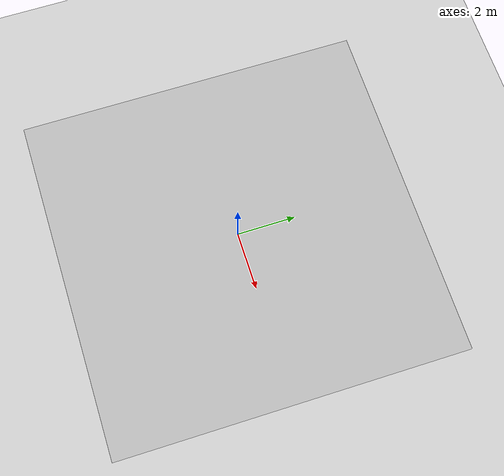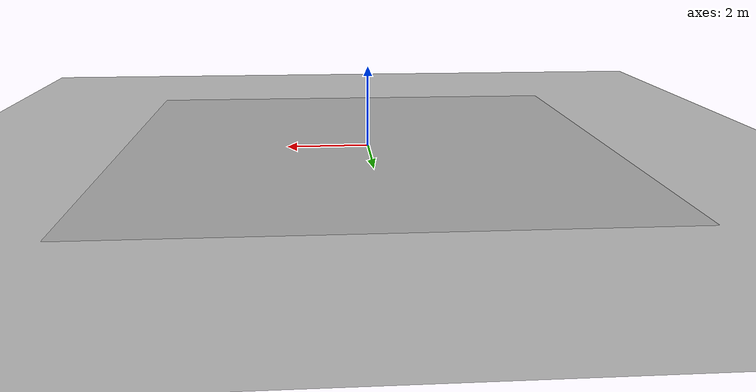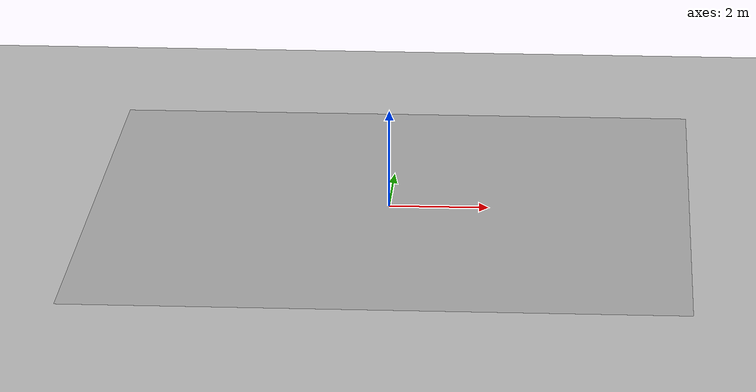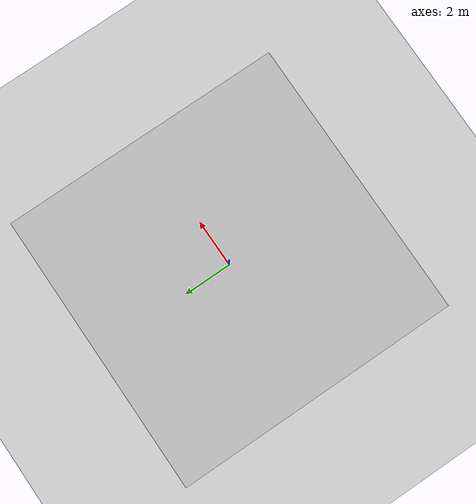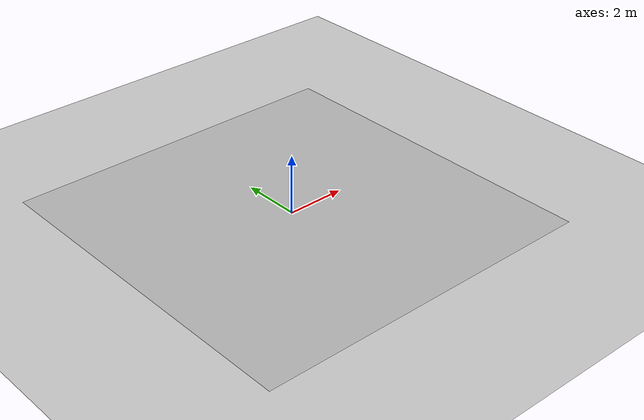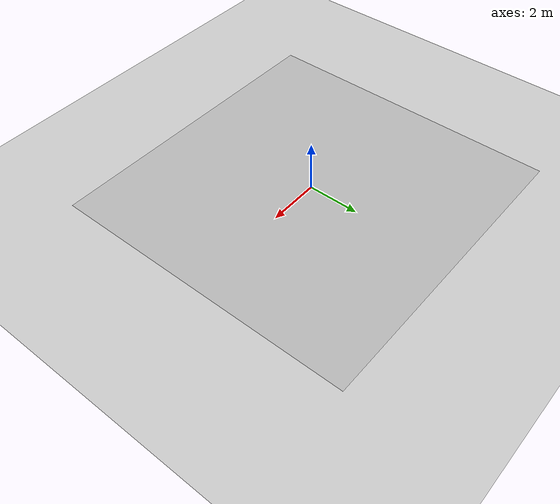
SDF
<sdf version="1.7">
 <world name="default">
  <plugin name="ros_interface_plugin" filename="librotors_gazebo_ros_interface_plugin.so"/>
  <light name="sun" type="directional">
   <pose>0 0 10 0 -0 0</pose>
   <diffuse>0.8 0.8 0.8 1</diffuse>
   <specular>0.2 0.2 0.2 1</specular>
   <attenuation>
    <range>1000</range>
    <constant>0.9</constant>
    <linear>0.01</linear>
    <quadratic>0.001</quadratic>
   </attenuation>
   <direction>-0.5 0.1 -0.9</direction>
   <spot><inner_angle>0</inner_angle><outer_angle>0</outer_angle><falloff>0</falloff></spot>
  </light>
  <model name="ground_plane">
   <static>1</static>
   <link name="link">
    <collision name="collision">
     <geometry><plane><normal>0 0 1</normal><size>100 100</size></plane></geometry>
     <surface>
      <contact><collide_bitmask>65535</collide_bitmask></contact>
      <friction><ode><mu>100</mu><mu2>50</mu2></ode></friction>
     </surface>
    </collision>
    <visual name="visual">
     <cast_shadows>0</cast_shadows>
     <geometry><plane><normal>0 0 1</normal><size>100 100</size></plane></geometry>
     <material>
      <script><uri>file://media/materials/scripts/gazebo.material</uri><name>Gazebo/Grey</name></script>
     </material>
    </visual>
   </link>
  </model>
  <gravity>0 0 -9.8</gravity>
  <magnetic_field>6e-06 2.3e-05 -4.2e-05</magnetic_field>
  <atmosphere type="adiabatic"/>
  <physics type="ode">
   <max_step_size>0.001</max_step_size>
   <real_time_factor>1</real_time_factor>
   <real_time_update_rate>1000</real_time_update_rate>
  </physics>
  <scene><ambient>0.4 0.4 0.4 1</ambient><background>0.7 0.7 0.7 1</background><shadows>1</shadows></scene>
  <spherical_coordinates>
   <surface_model>EARTH_WGS84</surface_model>
   <latitude_deg>0</latitude_deg>
   <longitude_deg>0</longitude_deg>
   <elevation>0</elevation>
   <heading_deg>0</heading_deg>
  </spherical_coordinates>
  <model name="Tatame_eRobotica">
   <model name="Tatame_model">
    <static>1</static>
    <pose>0.004587 -0.003549 0.019779 3.14159 0.001283 3.14159</pose>
    <link name="Tatame_link">
     <visual name="floor">
      <pose>-5 -5 0.01 0 -0 0</pose>
      <cast_shadows>0</cast_shadows>
      <geometry><mesh><uri>model://Tatame_eRobotica/Tatame.dae</uri></mesh></geometry>
     </visual>
     <collision name="floor_collision"><geometry><box><size>10 10 0.02</size></box></geometry></collision>
    </link>
   </model>
   <static>0</static>
   <pose>1.02437 -0.98355 0.001314 0 -0 0</pose>
  </model>
 </world>
</sdf>
